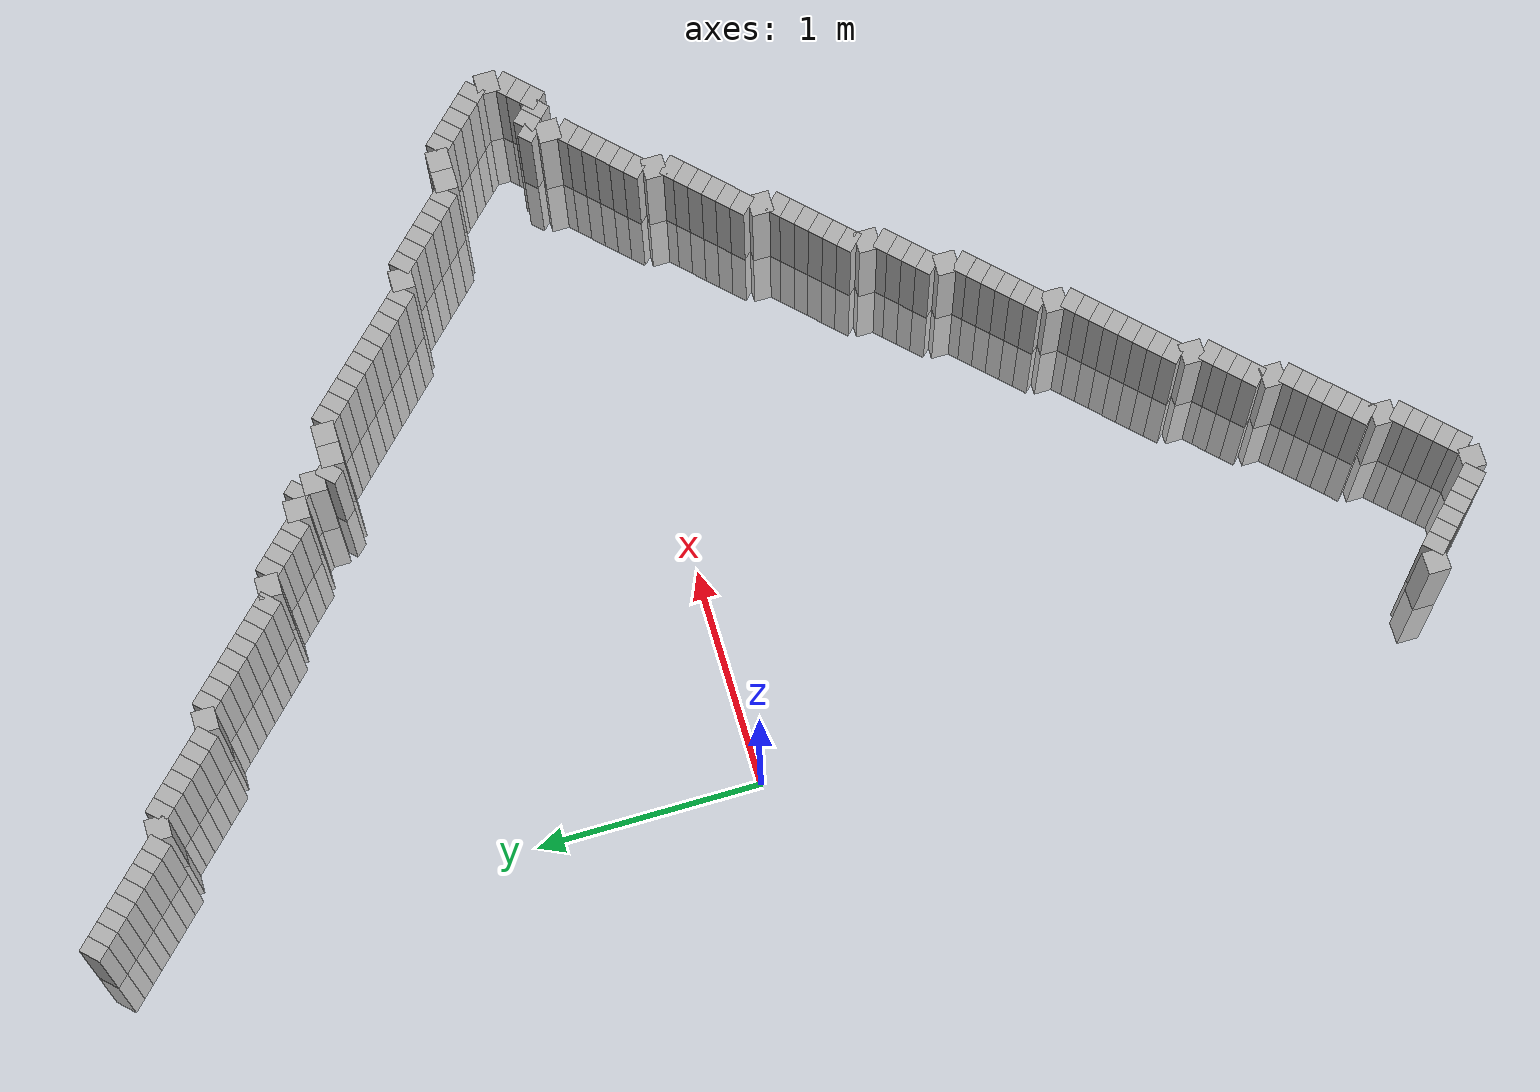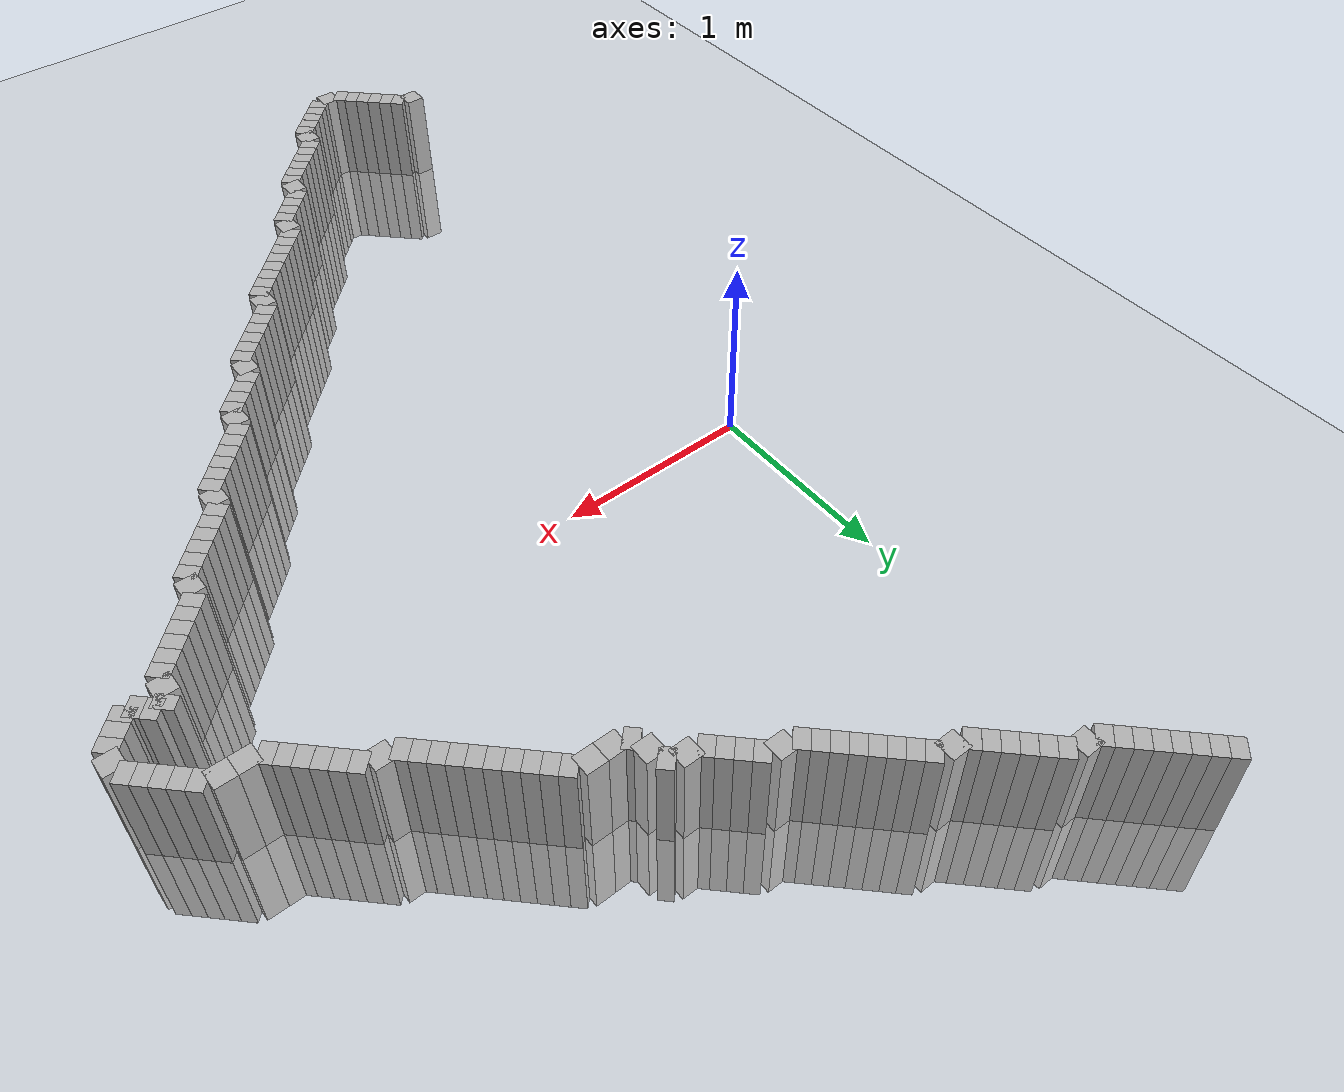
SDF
<sdf version="1.6">
 <world name="default">
  <include><uri>model://ground_plane</uri></include>
  <include><uri>model://sun</uri></include>
  <model name="wall_0">
   <static>true</static>
   <pose>0.2750 -3.2250 0 0 0 2.3562</pose>
   <link name="link">
    <visual name="vis"><geometry><box><size>0.0707 0.10 1.00</size></box></geometry></visual>
    <collision name="col"><geometry><box><size>0.0707 0.10 1.00</size></box></geometry></collision>
   </link>
  </model>
  <model name="wall_1">
   <static>true</static>
   <pose>0.2250 -3.1750 0 0 0 2.3562</pose>
   <link name="link">
    <visual name="vis"><geometry><box><size>0.0707 0.10 1.00</size></box></geometry></visual>
    <collision name="col"><geometry><box><size>0.0707 0.10 1.00</size></box></geometry></collision>
   </link>
  </model>
  <model name="wall_2">
   <static>true</static>
   <pose>0.1750 -3.1250 0 0 0 2.3562</pose>
   <link name="link">
    <visual name="vis"><geometry><box><size>0.0707 0.10 1.00</size></box></geometry></visual>
    <collision name="col"><geometry><box><size>0.0707 0.10 1.00</size></box></geometry></collision>
   </link>
  </model>
  <model name="wall_3">
   <static>true</static>
   <pose>0.1250 -3.0750 0 0 0 2.3562</pose>
   <link name="link">
    <visual name="vis"><geometry><box><size>0.0707 0.10 1.00</size></box></geometry></visual>
    <collision name="col"><geometry><box><size>0.0707 0.10 1.00</size></box></geometry></collision>
   </link>
  </model>
  <model name="wall_4">
   <static>true</static>
   <pose>0.0750 -3.0250 0 0 0 2.3562</pose>
   <link name="link">
    <visual name="vis"><geometry><box><size>0.0707 0.10 1.00</size></box></geometry></visual>
    <collision name="col"><geometry><box><size>0.0707 0.10 1.00</size></box></geometry></collision>
   </link>
  </model>
  <model name="wall_5">
   <static>true</static>
   <pose>0.0000 -3.0000 0 0 0 3.1416</pose>
   <link name="link">
    <visual name="vis"><geometry><box><size>0.1000 0.10 1.00</size></box></geometry></visual>
    <collision name="col"><geometry><box><size>0.1000 0.10 1.00</size></box></geometry></collision>
   </link>
  </model>
  <model name="wall_136">
   <static>true</static>
   <pose>-0.0250 2.8750 0 0 0 -0.7854</pose>
   <link name="link">
    <visual name="vis"><geometry><box><size>0.0707 0.10 1.00</size></box></geometry></visual>
    <collision name="col"><geometry><box><size>0.0707 0.10 1.00</size></box></geometry></collision>
   </link>
  </model>
  <model name="wall_137">
   <static>true</static>
   <pose>0.0250 2.8250 0 0 0 -0.7854</pose>
   <link name="link">
    <visual name="vis"><geometry><box><size>0.0707 0.10 1.00</size></box></geometry></visual>
    <collision name="col"><geometry><box><size>0.0707 0.10 1.00</size></box></geometry></collision>
   </link>
  </model>
  <model name="wall_138">
   <static>true</static>
   <pose>0.0750 2.7750 0 0 0 -0.7854</pose>
   <link name="link">
    <visual name="vis"><geometry><box><size>0.0707 0.10 1.00</size></box></geometry></visual>
    <collision name="col"><geometry><box><size>0.0707 0.10 1.00</size></box></geometry></collision>
   </link>
  </model>
  <model name="wall_139">
   <static>true</static>
   <pose>0.1250 2.7250 0 0 0 -0.7854</pose>
   <link name="link">
    <visual name="vis"><geometry><box><size>0.0707 0.10 1.00</size></box></geometry></visual>
    <collision name="col"><geometry><box><size>0.0707 0.10 1.00</size></box></geometry></collision>
   </link>
  </model>
  <model name="wall_140">
   <static>true</static>
   <pose>0.1750 2.6750 0 0 0 -0.7854</pose>
   <link name="link">
    <visual name="vis"><geometry><box><size>0.0707 0.10 1.00</size></box></geometry></visual>
    <collision name="col"><geometry><box><size>0.0707 0.10 1.00</size></box></geometry></collision>
   </link>
  </model>
  <model name="wall_141">
   <static>true</static>
   <pose>0.2250 2.6250 0 0 0 -0.7854</pose>
   <link name="link">
    <visual name="vis"><geometry><box><size>0.0707 0.10 1.00</size></box></geometry></visual>
    <collision name="col"><geometry><box><size>0.0707 0.10 1.00</size></box></geometry></collision>
   </link>
  </model>
  <model name="wall_142">
   <static>true</static>
   <pose>0.2750 2.5750 0 0 0 -0.7854</pose>
   <link name="link">
    <visual name="vis"><geometry><box><size>0.0707 0.10 1.00</size></box></geometry></visual>
    <collision name="col"><geometry><box><size>0.0707 0.10 1.00</size></box></geometry></collision>
   </link>
  </model>
  <model name="wall_143">
   <static>true</static>
   <pose>0.3250 2.5250 0 0 0 -0.7854</pose>
   <link name="link">
    <visual name="vis"><geometry><box><size>0.0707 0.10 1.00</size></box></geometry></visual>
    <collision name="col"><geometry><box><size>0.0707 0.10 1.00</size></box></geometry></collision>
   </link>
  </model>
  <model name="wall_144">
   <static>true</static>
   <pose>0.4000 2.5000 0 0 0 0.0000</pose>
   <link name="link">
    <visual name="vis"><geometry><box><size>0.1000 0.10 1.00</size></box></geometry></visual>
    <collision name="col"><geometry><box><size>0.1000 0.10 1.00</size></box></geometry></collision>
   </link>
  </model>
  <model name="wall_145">
   <static>true</static>
   <pose>0.4750 2.4750 0 0 0 -0.7854</pose>
   <link name="link">
    <visual name="vis"><geometry><box><size>0.0707 0.10 1.00</size></box></geometry></visual>
    <collision name="col"><geometry><box><size>0.0707 0.10 1.00</size></box></geometry></collision>
   </link>
  </model>
  <model name="wall_146">
   <static>true</static>
   <pose>0.5250 2.4250 0 0 0 -0.7854</pose>
   <link name="link">
    <visual name="vis"><geometry><box><size>0.0707 0.10 1.00</size></box></geometry></visual>
    <collision name="col"><geometry><box><size>0.0707 0.10 1.00</size></box></geometry></collision>
   </link>
  </model>
  <model name="wall_147">
   <static>true</static>
   <pose>0.5750 2.3750 0 0 0 -0.7854</pose>
   <link name="link">
    <visual name="vis"><geometry><box><size>0.0707 0.10 1.00</size></box></geometry></visual>
    <collision name="col"><geometry><box><size>0.0707 0.10 1.00</size></box></geometry></collision>
   </link>
  </model>
  <model name="wall_148">
   <static>true</static>
   <pose>0.6250 2.3250 0 0 0 -0.7854</pose>
   <link name="link">
    <visual name="vis"><geometry><box><size>0.0707 0.10 1.00</size></box></geometry></visual>
    <collision name="col"><geometry><box><size>0.0707 0.10 1.00</size></box></geometry></collision>
   </link>
  </model>
  <model name="wall_149">
   <static>true</static>
   <pose>0.6750 2.2750 0 0 0 -0.7854</pose>
   <link name="link">
    <visual name="vis"><geometry><box><size>0.0707 0.10 1.00</size></box></geometry></visual>
    <collision name="col"><geometry><box><size>0.0707 0.10 1.00</size></box></geometry></collision>
   </link>
  </model>
  <model name="wall_150">
   <static>true</static>
   <pose>0.7250 2.2250 0 0 0 -0.7854</pose>
   <link name="link">
    <visual name="vis"><geometry><box><size>0.0707 0.10 1.00</size></box></geometry></visual>
    <collision name="col"><geometry><box><size>0.0707 0.10 1.00</size></box></geometry></collision>
   </link>
  </model>
  <model name="wall_151">
   <static>true</static>
   <pose>0.8000 2.2000 0 0 0 0.0000</pose>
   <link name="link">
    <visual name="vis"><geometry><box><size>0.1000 0.10 1.00</size></box></geometry></visual>
    <collision name="col"><geometry><box><size>0.1000 0.10 1.00</size></box></geometry></collision>
   </link>
  </model>
  <model name="wall_152">
   <static>true</static>
   <pose>0.8750 2.1750 0 0 0 -0.7854</pose>
   <link name="link">
    <visual name="vis"><geometry><box><size>0.0707 0.10 1.00</size></box></geometry></visual>
    <collision name="col"><geometry><box><size>0.0707 0.10 1.00</size></box></geometry></collision>
   </link>
  </model>
  <model name="wall_153">
   <static>true</static>
   <pose>0.9250 2.1250 0 0 0 -0.7854</pose>
   <link name="link">
    <visual name="vis"><geometry><box><size>0.0707 0.10 1.00</size></box></geometry></visual>
    <collision name="col"><geometry><box><size>0.0707 0.10 1.00</size></box></geometry></collision>
   </link>
  </model>
  <model name="wall_154">
   <static>true</static>
   <pose>0.9750 2.0750 0 0 0 -0.7854</pose>
   <link name="link">
    <visual name="vis"><geometry><box><size>0.0707 0.10 1.00</size></box></geometry></visual>
    <collision name="col"><geometry><box><size>0.0707 0.10 1.00</size></box></geometry></collision>
   </link>
  </model>
  <model name="wall_155">
   <static>true</static>
   <pose>1.0250 2.0250 0 0 0 -0.7854</pose>
   <link name="link">
    <visual name="vis"><geometry><box><size>0.0707 0.10 1.00</size></box></geometry></visual>
    <collision name="col"><geometry><box><size>0.0707 0.10 1.00</size></box></geometry></collision>
   </link>
  </model>
  <model name="wall_156">
   <static>true</static>
   <pose>1.0750 1.9750 0 0 0 -0.7854</pose>
   <link name="link">
    <visual name="vis"><geometry><box><size>0.0707 0.10 1.00</size></box></geometry></visual>
    <collision name="col"><geometry><box><size>0.0707 0.10 1.00</size></box></geometry></collision>
   </link>
  </model>
  <model name="wall_157">
   <static>true</static>
   <pose>1.1250 1.9250 0 0 0 -0.7854</pose>
   <link name="link">
    <visual name="vis"><geometry><box><size>0.0707 0.10 1.00</size></box></geometry></visual>
    <collision name="col"><geometry><box><size>0.0707 0.10 1.00</size></box></geometry></collision>
   </link>
  </model>
  <model name="wall_158">
   <static>true</static>
   <pose>1.1750 1.8750 0 0 0 -0.7854</pose>
   <link name="link">
    <visual name="vis"><geometry><box><size>0.0707 0.10 1.00</size></box></geometry></visual>
    <collision name="col"><geometry><box><size>0.0707 0.10 1.00</size></box></geometry></collision>
   </link>
  </model>
  <model name="wall_159">
   <static>true</static>
   <pose>1.2250 1.8250 0 0 0 -0.7854</pose>
   <link name="link">
    <visual name="vis"><geometry><box><size>0.0707 0.10 1.00</size></box></geometry></visual>
    <collision name="col"><geometry><box><size>0.0707 0.10 1.00</size></box></geometry></collision>
   </link>
  </model>
  <model name="wall_160">
   <static>true</static>
   <pose>1.3000 1.8000 0 0 0 0.0000</pose>
   <link name="link">
    <visual name="vis"><geometry><box><size>0.1000 0.10 1.00</size></box></geometry></visual>
    <collision name="col"><geometry><box><size>0.1000 0.10 1.00</size></box></geometry></collision>
   </link>
  </model>
  <model name="wall_161">
   <static>true</static>
   <pose>1.3750 1.7750 0 0 0 -0.7854</pose>
   <link name="link">
    <visual name="vis"><geometry><box><size>0.0707 0.10 1.00</size></box></geometry></visual>
    <collision name="col"><geometry><box><size>0.0707 0.10 1.00</size></box></geometry></collision>
   </link>
  </model>
  <model name="wall_162">
   <static>true</static>
   <pose>1.4250 1.7250 0 0 0 -0.7854</pose>
   <link name="link">
    <visual name="vis"><geometry><box><size>0.0707 0.10 1.00</size></box></geometry></visual>
    <collision name="col"><geometry><box><size>0.0707 0.10 1.00</size></box></geometry></collision>
   </link>
  </model>
  <model name="wall_163">
   <static>true</static>
   <pose>1.4750 1.6750 0 0 0 -0.7854</pose>
   <link name="link">
    <visual name="vis"><geometry><box><size>0.0707 0.10 1.00</size></box></geometry></visual>
    <collision name="col"><geometry><box><size>0.0707 0.10 1.00</size></box></geometry></collision>
   </link>
  </model>
  <model name="wall_164">
   <static>true</static>
   <pose>1.5250 1.6250 0 0 0 -0.7854</pose>
   <link name="link">
    <visual name="vis"><geometry><box><size>0.0707 0.10 1.00</size></box></geometry></visual>
    <collision name="col"><geometry><box><size>0.0707 0.10 1.00</size></box></geometry></collision>
   </link>
  </model>
  <model name="wall_165">
   <static>true</static>
   <pose>1.6000 1.6000 0 0 0 0.0000</pose>
   <link name="link">
    <visual name="vis"><geometry><box><size>0.1000 0.10 1.00</size></box></geometry></visual>
    <collision name="col"><geometry><box><size>0.1000 0.10 1.00</size></box></geometry></collision>
   </link>
  </model>
  <model name="wall_166">
   <static>true</static>
   <pose>1.6750 1.5750 0 0 0 -0.7854</pose>
   <link name="link">
    <visual name="vis"><geometry><box><size>0.0707 0.10 1.00</size></box></geometry></visual>
    <collision name="col"><geometry><box><size>0.0707 0.10 1.00</size></box></geometry></collision>
   </link>
  </model>
  <model name="wall_167">
   <static>true</static>
   <pose>1.7000 1.5000 0 0 0 -1.5708</pose>
   <link name="link">
    <visual name="vis"><geometry><box><size>0.1000 0.10 1.00</size></box></geometry></visual>
    <collision name="col"><geometry><box><size>0.1000 0.10 1.00</size></box></geometry></collision>
   </link>
  </model>
  <model name="wall_168">
   <static>true</static>
   <pose>1.7250 1.4250 0 0 0 -0.7854</pose>
   <link name="link">
    <visual name="vis"><geometry><box><size>0.0707 0.10 1.00</size></box></geometry></visual>
    <collision name="col"><geometry><box><size>0.0707 0.10 1.00</size></box></geometry></collision>
   </link>
  </model>
  <model name="wall_169">
   <static>true</static>
   <pose>1.8000 1.4000 0 0 0 0.0000</pose>
   <link name="link">
    <visual name="vis"><geometry><box><size>0.1000 0.10 1.00</size></box></geometry></visual>
    <collision name="col"><geometry><box><size>0.1000 0.10 1.00</size></box></geometry></collision>
   </link>
  </model>
  <model name="wall_170">
   <static>true</static>
   <pose>1.9000 1.4000 0 0 0 0.0000</pose>
   <link name="link">
    <visual name="vis"><geometry><box><size>0.1000 0.10 1.00</size></box></geometry></visual>
    <collision name="col"><geometry><box><size>0.1000 0.10 1.00</size></box></geometry></collision>
   </link>
  </model>
  <model name="wall_171">
   <static>true</static>
   <pose>1.9750 1.3750 0 0 0 -0.7854</pose>
   <link name="link">
    <visual name="vis"><geometry><box><size>0.0707 0.10 1.00</size></box></geometry></visual>
    <collision name="col"><geometry><box><size>0.0707 0.10 1.00</size></box></geometry></collision>
   </link>
  </model>
  <model name="wall_172">
   <static>true</static>
   <pose>2.0250 1.3250 0 0 0 -0.7854</pose>
   <link name="link">
    <visual name="vis"><geometry><box><size>0.0707 0.10 1.00</size></box></geometry></visual>
    <collision name="col"><geometry><box><size>0.0707 0.10 1.00</size></box></geometry></collision>
   </link>
  </model>
  <model name="wall_173">
   <static>true</static>
   <pose>2.0750 1.2750 0 0 0 -0.7854</pose>
   <link name="link">
    <visual name="vis"><geometry><box><size>0.0707 0.10 1.00</size></box></geometry></visual>
    <collision name="col"><geometry><box><size>0.0707 0.10 1.00</size></box></geometry></collision>
   </link>
  </model>
  <model name="wall_174">
   <static>true</static>
   <pose>2.1250 1.2250 0 0 0 -0.7854</pose>
   <link name="link">
    <visual name="vis"><geometry><box><size>0.0707 0.10 1.00</size></box></geometry></visual>
    <collision name="col"><geometry><box><size>0.0707 0.10 1.00</size></box></geometry></collision>
   </link>
  </model>
  <model name="wall_175">
   <static>true</static>
   <pose>2.1750 1.1750 0 0 0 -0.7854</pose>
   <link name="link">
    <visual name="vis"><geometry><box><size>0.0707 0.10 1.00</size></box></geometry></visual>
    <collision name="col"><geometry><box><size>0.0707 0.10 1.00</size></box></geometry></collision>
   </link>
  </model>
  <model name="wall_176">
   <static>true</static>
   <pose>2.2250 1.1250 0 0 0 -0.7854</pose>
   <link name="link">
    <visual name="vis"><geometry><box><size>0.0707 0.10 1.00</size></box></geometry></visual>
    <collision name="col"><geometry><box><size>0.0707 0.10 1.00</size></box></geometry></collision>
   </link>
  </model>
  <model name="wall_177">
   <static>true</static>
   <pose>2.2750 1.0750 0 0 0 -0.7854</pose>
   <link name="link">
    <visual name="vis"><geometry><box><size>0.0707 0.10 1.00</size></box></geometry></visual>
    <collision name="col"><geometry><box><size>0.0707 0.10 1.00</size></box></geometry></collision>
   </link>
  </model>
  <model name="wall_178">
   <static>true</static>
   <pose>2.3250 1.0250 0 0 0 -0.7854</pose>
   <link name="link">
    <visual name="vis"><geometry><box><size>0.0707 0.10 1.00</size></box></geometry></visual>
    <collision name="col"><geometry><box><size>0.0707 0.10 1.00</size></box></geometry></collision>
   </link>
  </model>
  <model name="wall_179">
   <static>true</static>
   <pose>2.3750 0.9750 0 0 0 -0.7854</pose>
   <link name="link">
    <visual name="vis"><geometry><box><size>0.0707 0.10 1.00</size></box></geometry></visual>
    <collision name="col"><geometry><box><size>0.0707 0.10 1.00</size></box></geometry></collision>
   </link>
  </model>
  <model name="wall_180">
   <static>true</static>
   <pose>2.4250 0.9250 0 0 0 -0.7854</pose>
   <link name="link">
    <visual name="vis"><geometry><box><size>0.0707 0.10 1.00</size></box></geometry></visual>
    <collision name="col"><geometry><box><size>0.0707 0.10 1.00</size></box></geometry></collision>
   </link>
  </model>
  <model name="wall_181">
   <static>true</static>
   <pose>2.5000 0.9000 0 0 0 0.0000</pose>
   <link name="link">
    <visual name="vis"><geometry><box><size>0.1000 0.10 1.00</size></box></geometry></visual>
    <collision name="col"><geometry><box><size>0.1000 0.10 1.00</size></box></geometry></collision>
   </link>
  </model>
  <model name="wall_182">
   <static>true</static>
   <pose>2.5750 0.8750 0 0 0 -0.7854</pose>
   <link name="link">
    <visual name="vis"><geometry><box><size>0.0707 0.10 1.00</size></box></geometry></visual>
    <collision name="col"><geometry><box><size>0.0707 0.10 1.00</size></box></geometry></collision>
   </link>
  </model>
  <model name="wall_183">
   <static>true</static>
   <pose>2.6250 0.8250 0 0 0 -0.7854</pose>
   <link name="link">
    <visual name="vis"><geometry><box><size>0.0707 0.10 1.00</size></box></geometry></visual>
    <collision name="col"><geometry><box><size>0.0707 0.10 1.00</size></box></geometry></collision>
   </link>
  </model>
  <model name="wall_184">
   <static>true</static>
   <pose>2.6750 0.7750 0 0 0 -0.7854</pose>
   <link name="link">
    <visual name="vis"><geometry><box><size>0.0707 0.10 1.00</size></box></geometry></visual>
    <collision name="col"><geometry><box><size>0.0707 0.10 1.00</size></box></geometry></collision>
   </link>
  </model>
  <model name="wall_185">
   <static>true</static>
   <pose>2.7250 0.7250 0 0 0 -0.7854</pose>
   <link name="link">
    <visual name="vis"><geometry><box><size>0.0707 0.10 1.00</size></box></geometry></visual>
    <collision name="col"><geometry><box><size>0.0707 0.10 1.00</size></box></geometry></collision>
   </link>
  </model>
  <model name="wall_186">
   <static>true</static>
   <pose>2.7750 0.6750 0 0 0 -0.7854</pose>
   <link name="link">
    <visual name="vis"><geometry><box><size>0.0707 0.10 1.00</size></box></geometry></visual>
    <collision name="col"><geometry><box><size>0.0707 0.10 1.00</size></box></geometry></collision>
   </link>
  </model>
  <model name="wall_187">
   <static>true</static>
   <pose>2.8250 0.6250 0 0 0 -0.7854</pose>
   <link name="link">
    <visual name="vis"><geometry><box><size>0.0707 0.10 1.00</size></box></geometry></visual>
    <collision name="col"><geometry><box><size>0.0707 0.10 1.00</size></box></geometry></collision>
   </link>
  </model>
  <model name="wall_188">
   <static>true</static>
   <pose>2.9000 0.6000 0 0 0 0.0000</pose>
   <link name="link">
    <visual name="vis"><geometry><box><size>0.1000 0.10 1.00</size></box></geometry></visual>
    <collision name="col"><geometry><box><size>0.1000 0.10 1.00</size></box></geometry></collision>
   </link>
  </model>
  <model name="wall_189">
   <static>true</static>
   <pose>3.0000 0.6000 0 0 0 0.0000</pose>
   <link name="link">
    <visual name="vis"><geometry><box><size>0.1000 0.10 1.00</size></box></geometry></visual>
    <collision name="col"><geometry><box><size>0.1000 0.10 1.00</size></box></geometry></collision>
   </link>
  </model>
  <model name="wall_190">
   <static>true</static>
   <pose>3.0750 0.5750 0 0 0 -0.7854</pose>
   <link name="link">
    <visual name="vis"><geometry><box><size>0.0707 0.10 1.00</size></box></geometry></visual>
    <collision name="col"><geometry><box><size>0.0707 0.10 1.00</size></box></geometry></collision>
   </link>
  </model>
  <model name="wall_191">
   <static>true</static>
   <pose>3.1250 0.5250 0 0 0 -0.7854</pose>
   <link name="link">
    <visual name="vis"><geometry><box><size>0.0707 0.10 1.00</size></box></geometry></visual>
    <collision name="col"><geometry><box><size>0.0707 0.10 1.00</size></box></geometry></collision>
   </link>
  </model>
  <model name="wall_192">
   <static>true</static>
   <pose>3.1750 0.4750 0 0 0 -0.7854</pose>
   <link name="link">
    <visual name="vis"><geometry><box><size>0.0707 0.10 1.00</size></box></geometry></visual>
    <collision name="col"><geometry><box><size>0.0707 0.10 1.00</size></box></geometry></collision>
   </link>
  </model>
  <model name="wall_193">
   <static>true</static>
   <pose>3.2250 0.4250 0 0 0 -0.7854</pose>
   <link name="link">
    <visual name="vis"><geometry><box><size>0.0707 0.10 1.00</size></box></geometry></visual>
    <collision name="col"><geometry><box><size>0.0707 0.10 1.00</size></box></geometry></collision>
   </link>
  </model>
  <model name="wall_194">
   <static>true</static>
   <pose>3.2750 0.3750 0 0 0 -0.7854</pose>
   <link name="link">
    <visual name="vis"><geometry><box><size>0.0707 0.10 1.00</size></box></geometry></visual>
    <collision name="col"><geometry><box><size>0.0707 0.10 1.00</size></box></geometry></collision>
   </link>
  </model>
  <model name="wall_195">
   <static>true</static>
   <pose>3.3000 0.3000 0 0 0 -1.5708</pose>
   <link name="link">
    <visual name="vis"><geometry><box><size>0.1000 0.10 1.00</size></box></geometry></visual>
    <collision name="col"><geometry><box><size>0.1000 0.10 1.00</size></box></geometry></collision>
   </link>
  </model>
  <model name="wall_196">
   <static>true</static>
   <pose>3.2750 0.2250 0 0 0 -2.3562</pose>
   <link name="link">
    <visual name="vis"><geometry><box><size>0.0707 0.10 1.00</size></box></geometry></visual>
    <collision name="col"><geometry><box><size>0.0707 0.10 1.00</size></box></geometry></collision>
   </link>
  </model>
  <model name="wall_197">
   <static>true</static>
   <pose>3.2250 0.1750 0 0 0 -2.3562</pose>
   <link name="link">
    <visual name="vis"><geometry><box><size>0.0707 0.10 1.00</size></box></geometry></visual>
    <collision name="col"><geometry><box><size>0.0707 0.10 1.00</size></box></geometry></collision>
   </link>
  </model>
  <model name="wall_198">
   <static>true</static>
   <pose>3.1750 0.1250 0 0 0 -2.3562</pose>
   <link name="link">
    <visual name="vis"><geometry><box><size>0.0707 0.10 1.00</size></box></geometry></visual>
    <collision name="col"><geometry><box><size>0.0707 0.10 1.00</size></box></geometry></collision>
   </link>
  </model>
  <model name="wall_199">
   <static>true</static>
   <pose>3.1250 0.1250 0 0 0 2.3562</pose>
   <link name="link">
    <visual name="vis"><geometry><box><size>0.0707 0.10 1.00</size></box></geometry></visual>
    <collision name="col"><geometry><box><size>0.0707 0.10 1.00</size></box></geometry></collision>
   </link>
  </model>
  <model name="wall_200">
   <static>true</static>
   <pose>3.0750 0.1750 0 0 0 2.3562</pose>
   <link name="link">
    <visual name="vis"><geometry><box><size>0.0707 0.10 1.00</size></box></geometry></visual>
    <collision name="col"><geometry><box><size>0.0707 0.10 1.00</size></box></geometry></collision>
   </link>
  </model>
  <model name="wall_201">
   <static>true</static>
   <pose>3.0250 0.1750 0 0 0 -2.3562</pose>
   <link name="link">
    <visual name="vis"><geometry><box><size>0.0707 0.10 1.00</size></box></geometry></visual>
    <collision name="col"><geometry><box><size>0.0707 0.10 1.00</size></box></geometry></collision>
   </link>
  </model>
  <model name="wall_202">
   <static>true</static>
   <pose>3.0000 0.1000 0 0 0 -1.5708</pose>
   <link name="link">
    <visual name="vis"><geometry><box><size>0.1000 0.10 1.00</size></box></geometry></visual>
    <collision name="col"><geometry><box><size>0.1000 0.10 1.00</size></box></geometry></collision>
   </link>
  </model>
  <model name="wall_203">
   <static>true</static>
   <pose>2.9750 0.0250 0 0 0 -2.3562</pose>
   <link name="link">
    <visual name="vis"><geometry><box><size>0.0707 0.10 1.00</size></box></geometry></visual>
    <collision name="col"><geometry><box><size>0.0707 0.10 1.00</size></box></geometry></collision>
   </link>
  </model>
  <model name="wall_204">
   <static>true</static>
   <pose>2.9250 -0.0250 0 0 0 -2.3562</pose>
   <link name="link">
    <visual name="vis"><geometry><box><size>0.0707 0.10 1.00</size></box></geometry></visual>
    <collision name="col"><geometry><box><size>0.0707 0.10 1.00</size></box></geometry></collision>
   </link>
  </model>
  <model name="wall_205">
   <static>true</static>
   <pose>2.8750 -0.0750 0 0 0 -2.3562</pose>
   <link name="link">
    <visual name="vis"><geometry><box><size>0.0707 0.10 1.00</size></box></geometry></visual>
    <collision name="col"><geometry><box><size>0.0707 0.10 1.00</size></box></geometry></collision>
   </link>
  </model>
  <model name="wall_206">
   <static>true</static>
   <pose>2.8250 -0.1250 0 0 0 -2.3562</pose>
   <link name="link">
    <visual name="vis"><geometry><box><size>0.0707 0.10 1.00</size></box></geometry></visual>
    <collision name="col"><geometry><box><size>0.0707 0.10 1.00</size></box></geometry></collision>
   </link>
  </model>
  <model name="wall_207">
   <static>true</static>
   <pose>2.7750 -0.1750 0 0 0 -2.3562</pose>
   <link name="link">
    <visual name="vis"><geometry><box><size>0.0707 0.10 1.00</size></box></geometry></visual>
    <collision name="col"><geometry><box><size>0.0707 0.10 1.00</size></box></geometry></collision>
   </link>
  </model>
  <model name="wall_208">
   <static>true</static>
   <pose>2.7250 -0.2250 0 0 0 -2.3562</pose>
   <link name="link">
    <visual name="vis"><geometry><box><size>0.0707 0.10 1.00</size></box></geometry></visual>
    <collision name="col"><geometry><box><size>0.0707 0.10 1.00</size></box></geometry></collision>
   </link>
  </model>
  <model name="wall_209">
   <static>true</static>
   <pose>2.7000 -0.3000 0 0 0 -1.5708</pose>
   <link name="link">
    <visual name="vis"><geometry><box><size>0.1000 0.10 1.00</size></box></geometry></visual>
    <collision name="col"><geometry><box><size>0.1000 0.10 1.00</size></box></geometry></collision>
   </link>
  </model>
  <model name="wall_210">
   <static>true</static>
   <pose>2.6750 -0.3750 0 0 0 -2.3562</pose>
   <link name="link">
    <visual name="vis"><geometry><box><size>0.0707 0.10 1.00</size></box></geometry></visual>
    <collision name="col"><geometry><box><size>0.0707 0.10 1.00</size></box></geometry></collision>
   </link>
  </model>
  <model name="wall_211">
   <static>true</static>
   <pose>2.6250 -0.4250 0 0 0 -2.3562</pose>
   <link name="link">
    <visual name="vis"><geometry><box><size>0.0707 0.10 1.00</size></box></geometry></visual>
    <collision name="col"><geometry><box><size>0.0707 0.10 1.00</size></box></geometry></collision>
   </link>
  </model>
  <model name="wall_212">
   <static>true</static>
   <pose>2.5750 -0.4750 0 0 0 -2.3562</pose>
   <link name="link">
    <visual name="vis"><geometry><box><size>0.0707 0.10 1.00</size></box></geometry></visual>
    <collision name="col"><geometry><box><size>0.0707 0.10 1.00</size></box></geometry></collision>
   </link>
  </model>
  <model name="wall_213">
   <static>true</static>
   <pose>2.5250 -0.5250 0 0 0 -2.3562</pose>
   <link name="link">
    <visual name="vis"><geometry><box><size>0.0707 0.10 1.00</size></box></geometry></visual>
    <collision name="col"><geometry><box><size>0.0707 0.10 1.00</size></box></geometry></collision>
   </link>
  </model>
  <model name="wall_214">
   <static>true</static>
   <pose>2.4750 -0.5750 0 0 0 -2.3562</pose>
   <link name="link">
    <visual name="vis"><geometry><box><size>0.0707 0.10 1.00</size></box></geometry></visual>
    <collision name="col"><geometry><box><size>0.0707 0.10 1.00</size></box></geometry></collision>
   </link>
  </model>
  <model name="wall_215">
   <static>true</static>
   <pose>2.4250 -0.6250 0 0 0 -2.3562</pose>
   <link name="link">
    <visual name="vis"><geometry><box><size>0.0707 0.10 1.00</size></box></geometry></visual>
    <collision name="col"><geometry><box><size>0.0707 0.10 1.00</size></box></geometry></collision>
   </link>
  </model>
  <model name="wall_216">
   <static>true</static>
   <pose>2.4000 -0.7000 0 0 0 -1.5708</pose>
   <link name="link">
    <visual name="vis"><geometry><box><size>0.1000 0.10 1.00</size></box></geometry></visual>
    <collision name="col"><geometry><box><size>0.1000 0.10 1.00</size></box></geometry></collision>
   </link>
  </model>
  <model name="wall_217">
   <static>true</static>
   <pose>2.3750 -0.7750 0 0 0 -2.3562</pose>
   <link name="link">
    <visual name="vis"><geometry><box><size>0.0707 0.10 1.00</size></box></geometry></visual>
    <collision name="col"><geometry><box><size>0.0707 0.10 1.00</size></box></geometry></collision>
   </link>
  </model>
  <model name="wall_218">
   <static>true</static>
   <pose>2.3250 -0.8250 0 0 0 -2.3562</pose>
   <link name="link">
    <visual name="vis"><geometry><box><size>0.0707 0.10 1.00</size></box></geometry></visual>
    <collision name="col"><geometry><box><size>0.0707 0.10 1.00</size></box></geometry></collision>
   </link>
  </model>
  <model name="wall_219">
   <static>true</static>
   <pose>2.2750 -0.8750 0 0 0 -2.3562</pose>
   <link name="link">
    <visual name="vis"><geometry><box><size>0.0707 0.10 1.00</size></box></geometry></visual>
    <collision name="col"><geometry><box><size>0.0707 0.10 1.00</size></box></geometry></collision>
   </link>
  </model>
  <model name="wall_220">
   <static>true</static>
   <pose>2.2250 -0.9250 0 0 0 -2.3562</pose>
   <link name="link">
    <visual name="vis"><geometry><box><size>0.0707 0.10 1.00</size></box></geometry></visual>
    <collision name="col"><geometry><box><size>0.0707 0.10 1.00</size></box></geometry></collision>
   </link>
  </model>
  <model name="wall_221">
   <static>true</static>
   <pose>2.1750 -0.9750 0 0 0 -2.3562</pose>
   <link name="link">
    <visual name="vis"><geometry><box><size>0.0707 0.10 1.00</size></box></geometry></visual>
    <collision name="col"><geometry><box><size>0.0707 0.10 1.00</size></box></geometry></collision>
   </link>
  </model>
  <model name="wall_222">
   <static>true</static>
   <pose>2.1250 -1.0250 0 0 0 -2.3562</pose>
   <link name="link">
    <visual name="vis"><geometry><box><size>0.0707 0.10 1.00</size></box></geometry></visual>
    <collision name="col"><geometry><box><size>0.0707 0.10 1.00</size></box></geometry></collision>
   </link>
  </model>
  <model name="wall_223">
   <static>true</static>
   <pose>2.1000 -1.1000 0 0 0 -1.5708</pose>
   <link name="link">
    <visual name="vis"><geometry><box><size>0.1000 0.10 1.00</size></box></geometry></visual>
    <collision name="col"><geometry><box><size>0.1000 0.10 1.00</size></box></geometry></collision>
   </link>
  </model>
  <model name="wall_224">
   <static>true</static>
   <pose>2.0750 -1.1750 0 0 0 -2.3562</pose>
   <link name="link">
    <visual name="vis"><geometry><box><size>0.0707 0.10 1.00</size></box></geometry></visual>
    <collision name="col"><geometry><box><size>0.0707 0.10 1.00</size></box></geometry></collision>
   </link>
  </model>
  <model name="wall_225">
   <static>true</static>
   <pose>2.0250 -1.2250 0 0 0 -2.3562</pose>
   <link name="link">
    <visual name="vis"><geometry><box><size>0.0707 0.10 1.00</size></box></geometry></visual>
    <collision name="col"><geometry><box><size>0.0707 0.10 1.00</size></box></geometry></collision>
   </link>
  </model>
  <model name="wall_226">
   <static>true</static>
   <pose>1.9750 -1.2750 0 0 0 -2.3562</pose>
   <link name="link">
    <visual name="vis"><geometry><box><size>0.0707 0.10 1.00</size></box></geometry></visual>
    <collision name="col"><geometry><box><size>0.0707 0.10 1.00</size></box></geometry></collision>
   </link>
  </model>
  <model name="wall_227">
   <static>true</static>
   <pose>1.9250 -1.3250 0 0 0 -2.3562</pose>
   <link name="link">
    <visual name="vis"><geometry><box><size>0.0707 0.10 1.00</size></box></geometry></visual>
    <collision name="col"><geometry><box><size>0.0707 0.10 1.00</size></box></geometry></collision>
   </link>
  </model>
  <model name="wall_228">
   <static>true</static>
   <pose>1.9000 -1.4000 0 0 0 -1.5708</pose>
   <link name="link">
    <visual name="vis"><geometry><box><size>0.1000 0.10 1.00</size></box></geometry></visual>
    <collision name="col"><geometry><box><size>0.1000 0.10 1.00</size></box></geometry></collision>
   </link>
  </model>
  <model name="wall_229">
   <static>true</static>
   <pose>1.8750 -1.4750 0 0 0 -2.3562</pose>
   <link name="link">
    <visual name="vis"><geometry><box><size>0.0707 0.10 1.00</size></box></geometry></visual>
    <collision name="col"><geometry><box><size>0.0707 0.10 1.00</size></box></geometry></collision>
   </link>
  </model>
  <model name="wall_230">
   <static>true</static>
   <pose>1.8250 -1.5250 0 0 0 -2.3562</pose>
   <link name="link">
    <visual name="vis"><geometry><box><size>0.0707 0.10 1.00</size></box></geometry></visual>
    <collision name="col"><geometry><box><size>0.0707 0.10 1.00</size></box></geometry></collision>
   </link>
  </model>
  <model name="wall_231">
   <static>true</static>
   <pose>1.7750 -1.5750 0 0 0 -2.3562</pose>
   <link name="link">
    <visual name="vis"><geometry><box><size>0.0707 0.10 1.00</size></box></geometry></visual>
    <collision name="col"><geometry><box><size>0.0707 0.10 1.00</size></box></geometry></collision>
   </link>
  </model>
  <model name="wall_232">
   <static>true</static>
   <pose>1.7250 -1.6250 0 0 0 -2.3562</pose>
   <link name="link">
    <visual name="vis"><geometry><box><size>0.0707 0.10 1.00</size></box></geometry></visual>
    <collision name="col"><geometry><box><size>0.0707 0.10 1.00</size></box></geometry></collision>
   </link>
  </model>
  <model name="wall_233">
   <static>true</static>
   <pose>1.6750 -1.6750 0 0 0 -2.3562</pose>
   <link name="link">
    <visual name="vis"><geometry><box><size>0.0707 0.10 1.00</size></box></geometry></visual>
    <collision name="col"><geometry><box><size>0.0707 0.10 1.00</size></box></geometry></collision>
   </link>
  </model>
  <model name="wall_234">
   <static>true</static>
   <pose>1.6250 -1.7250 0 0 0 -2.3562</pose>
   <link name="link">
    <visual name="vis"><geometry><box><size>0.0707 0.10 1.00</size></box></geometry></visual>
    <collision name="col"><geometry><box><size>0.0707 0.10 1.00</size></box></geometry></collision>
   </link>
  </model>
  <model name="wall_235">
   <static>true</static>
   <pose>1.6000 -1.8000 0 0 0 -1.5708</pose>
   <link name="link">
    <visual name="vis"><geometry><box><size>0.1000 0.10 1.00</size></box></geometry></visual>
    <collision name="col"><geometry><box><size>0.1000 0.10 1.00</size></box></geometry></collision>
   </link>
  </model>
  <model name="wall_236">
   <static>true</static>
   <pose>1.5750 -1.8750 0 0 0 -2.3562</pose>
   <link name="link">
    <visual name="vis"><geometry><box><size>0.0707 0.10 1.00</size></box></geometry></visual>
    <collision name="col"><geometry><box><size>0.0707 0.10 1.00</size></box></geometry></collision>
   </link>
  </model>
  <model name="wall_237">
   <static>true</static>
   <pose>1.5250 -1.9250 0 0 0 -2.3562</pose>
   <link name="link">
    <visual name="vis"><geometry><box><size>0.0707 0.10 1.00</size></box></geometry></visual>
    <collision name="col"><geometry><box><size>0.0707 0.10 1.00</size></box></geometry></collision>
   </link>
  </model>
  <model name="wall_238">
   <static>true</static>
   <pose>1.4750 -1.9750 0 0 0 -2.3562</pose>
   <link name="link">
    <visual name="vis"><geometry><box><size>0.0707 0.10 1.00</size></box></geometry></visual>
    <collision name="col"><geometry><box><size>0.0707 0.10 1.00</size></box></geometry></collision>
   </link>
  </model>
  <model name="wall_239">
   <static>true</static>
   <pose>1.4250 -2.0250 0 0 0 -2.3562</pose>
   <link name="link">
    <visual name="vis"><geometry><box><size>0.0707 0.10 1.00</size></box></geometry></visual>
    <collision name="col"><geometry><box><size>0.0707 0.10 1.00</size></box></geometry></collision>
   </link>
  </model>
  <model name="wall_240">
   <static>true</static>
   <pose>1.3750 -2.0750 0 0 0 -2.3562</pose>
   <link name="link">
    <visual name="vis"><geometry><box><size>0.0707 0.10 1.00</size></box></geometry></visual>
    <collision name="col"><geometry><box><size>0.0707 0.10 1.00</size></box></geometry></collision>
   </link>
  </model>
  <model name="wall_241">
   <static>true</static>
   <pose>1.3250 -2.1250 0 0 0 -2.3562</pose>
   <link name="link">
    <visual name="vis"><geometry><box><size>0.0707 0.10 1.00</size></box></geometry></visual>
    <collision name="col"><geometry><box><size>0.0707 0.10 1.00</size></box></geometry></collision>
   </link>
  </model>
  <model name="wall_242">
   <static>true</static>
   <pose>1.2750 -2.1750 0 0 0 -2.3562</pose>
   <link name="link">
    <visual name="vis"><geometry><box><size>0.0707 0.10 1.00</size></box></geometry></visual>
    <collision name="col"><geometry><box><size>0.0707 0.10 1.00</size></box></geometry></collision>
   </link>
  </model>
  <model name="wall_243">
   <static>true</static>
   <pose>1.2250 -2.2250 0 0 0 -2.3562</pose>
   <link name="link">
    <visual name="vis"><geometry><box><size>0.0707 0.10 1.00</size></box></geometry></visual>
    <collision name="col"><geometry><box><size>0.0707 0.10 1.00</size></box></geometry></collision>
   </link>
  </model>
  <model name="wall_244">
   <static>true</static>
   <pose>1.2000 -2.3000 0 0 0 -1.5708</pose>
   <link name="link">
    <visual name="vis"><geometry><box><size>0.1000 0.10 1.00</size></box></geometry></visual>
    <collision name="col"><geometry><box><size>0.1000 0.10 1.00</size></box></geometry></collision>
   </link>
  </model>
  <model name="wall_245">
   <static>true</static>
   <pose>1.1750 -2.3750 0 0 0 -2.3562</pose>
   <link name="link">
    <visual name="vis"><geometry><box><size>0.0707 0.10 1.00</size></box></geometry></visual>
    <collision name="col"><geometry><box><size>0.0707 0.10 1.00</size></box></geometry></collision>
   </link>
  </model>
  <model name="wall_246">
   <static>true</static>
   <pose>1.1250 -2.4250 0 0 0 -2.3562</pose>
   <link name="link">
    <visual name="vis"><geometry><box><size>0.0707 0.10 1.00</size></box></geometry></visual>
    <collision name="col"><geometry><box><size>0.0707 0.10 1.00</size></box></geometry></collision>
   </link>
  </model>
  <model name="wall_247">
   <static>true</static>
   <pose>1.0750 -2.4750 0 0 0 -2.3562</pose>
   <link name="link">
    <visual name="vis"><geometry><box><size>0.0707 0.10 1.00</size></box></geometry></visual>
    <collision name="col"><geometry><box><size>0.0707 0.10 1.00</size></box></geometry></collision>
   </link>
  </model>
  <model name="wall_248">
   <static>true</static>
   <pose>1.0250 -2.5250 0 0 0 -2.3562</pose>
   <link name="link">
    <visual name="vis"><geometry><box><size>0.0707 0.10 1.00</size></box></geometry></visual>
    <collision name="col"><geometry><box><size>0.0707 0.10 1.00</size></box></geometry></collision>
   </link>
  </model>
  <model name="wall_249">
   <static>true</static>
   <pose>1.0000 -2.6000 0 0 0 -1.5708</pose>
   <link name="link">
    <visual name="vis"><geometry><box><size>0.1000 0.10 1.00</size></box></geometry></visual>
    <collision name="col"><geometry><box><size>0.1000 0.10 1.00</size></box></geometry></collision>
   </link>
  </model>
  <model name="wall_250">
   <static>true</static>
   <pose>0.9750 -2.6750 0 0 0 -2.3562</pose>
   <link name="link">
    <visual name="vis"><geometry><box><size>0.0707 0.10 1.00</size></box></geometry></visual>
    <collision name="col"><geometry><box><size>0.0707 0.10 1.00</size></box></geometry></collision>
   </link>
  </model>
  <model name="wall_251">
   <static>true</static>
   <pose>0.9250 -2.7250 0 0 0 -2.3562</pose>
   <link name="link">
    <visual name="vis"><geometry><box><size>0.0707 0.10 1.00</size></box></geometry></visual>
    <collision name="col"><geometry><box><size>0.0707 0.10 1.00</size></box></geometry></collision>
   </link>
  </model>
  <model name="wall_252">
   <static>true</static>
   <pose>0.8750 -2.7750 0 0 0 -2.3562</pose>
   <link name="link">
    <visual name="vis"><geometry><box><size>0.0707 0.10 1.00</size></box></geometry></visual>
    <collision name="col"><geometry><box><size>0.0707 0.10 1.00</size></box></geometry></collision>
   </link>
  </model>
  <model name="wall_253">
   <static>true</static>
   <pose>0.8250 -2.8250 0 0 0 -2.3562</pose>
   <link name="link">
    <visual name="vis"><geometry><box><size>0.0707 0.10 1.00</size></box></geometry></visual>
    <collision name="col"><geometry><box><size>0.0707 0.10 1.00</size></box></geometry></collision>
   </link>
  </model>
  <model name="wall_254">
   <static>true</static>
   <pose>0.7750 -2.8750 0 0 0 -2.3562</pose>
   <link name="link">
    <visual name="vis"><geometry><box><size>0.0707 0.10 1.00</size></box></geometry></visual>
    <collision name="col"><geometry><box><size>0.0707 0.10 1.00</size></box></geometry></collision>
   </link>
  </model>
  <model name="wall_255">
   <static>true</static>
   <pose>0.7250 -2.9250 0 0 0 -2.3562</pose>
   <link name="link">
    <visual name="vis"><geometry><box><size>0.0707 0.10 1.00</size></box></geometry></visual>
    <collision name="col"><geometry><box><size>0.0707 0.10 1.00</size></box></geometry></collision>
   </link>
  </model>
  <model name="wall_256">
   <static>true</static>
   <pose>0.7000 -3.0000 0 0 0 -1.5708</pose>
   <link name="link">
    <visual name="vis"><geometry><box><size>0.1000 0.10 1.00</size></box></geometry></visual>
    <collision name="col"><geometry><box><size>0.1000 0.10 1.00</size></box></geometry></collision>
   </link>
  </model>
  <model name="wall_257">
   <static>true</static>
   <pose>0.6750 -3.0750 0 0 0 -2.3562</pose>
   <link name="link">
    <visual name="vis"><geometry><box><size>0.0707 0.10 1.00</size></box></geometry></visual>
    <collision name="col"><geometry><box><size>0.0707 0.10 1.00</size></box></geometry></collision>
   </link>
  </model>
  <model name="wall_258">
   <static>true</static>
   <pose>0.6250 -3.1250 0 0 0 -2.3562</pose>
   <link name="link">
    <visual name="vis"><geometry><box><size>0.0707 0.10 1.00</size></box></geometry></visual>
    <collision name="col"><geometry><box><size>0.0707 0.10 1.00</size></box></geometry></collision>
   </link>
  </model>
  <model name="wall_259">
   <static>true</static>
   <pose>0.5750 -3.1750 0 0 0 -2.3562</pose>
   <link name="link">
    <visual name="vis"><geometry><box><size>0.0707 0.10 1.00</size></box></geometry></visual>
    <collision name="col"><geometry><box><size>0.0707 0.10 1.00</size></box></geometry></collision>
   </link>
  </model>
  <model name="wall_260">
   <static>true</static>
   <pose>0.5250 -3.2250 0 0 0 -2.3562</pose>
   <link name="link">
    <visual name="vis"><geometry><box><size>0.0707 0.10 1.00</size></box></geometry></visual>
    <collision name="col"><geometry><box><size>0.0707 0.10 1.00</size></box></geometry></collision>
   </link>
  </model>
  <model name="wall_261">
   <static>true</static>
   <pose>0.4750 -3.2750 0 0 0 -2.3562</pose>
   <link name="link">
    <visual name="vis"><geometry><box><size>0.0707 0.10 1.00</size></box></geometry></visual>
    <collision name="col"><geometry><box><size>0.0707 0.10 1.00</size></box></geometry></collision>
   </link>
  </model>
  <model name="wall_262">
   <static>true</static>
   <pose>0.4000 -3.3000 0 0 0 3.1416</pose>
   <link name="link">
    <visual name="vis"><geometry><box><size>0.1000 0.10 1.00</size></box></geometry></visual>
    <collision name="col"><geometry><box><size>0.1000 0.10 1.00</size></box></geometry></collision>
   </link>
  </model>
  <model name="wall_263">
   <static>true</static>
   <pose>0.3250 -3.2750 0 0 0 2.3562</pose>
   <link name="link">
    <visual name="vis"><geometry><box><size>0.0707 0.10 1.00</size></box></geometry></visual>
    <collision name="col"><geometry><box><size>0.0707 0.10 1.00</size></box></geometry></collision>
   </link>
  </model>
 </world>
</sdf>
